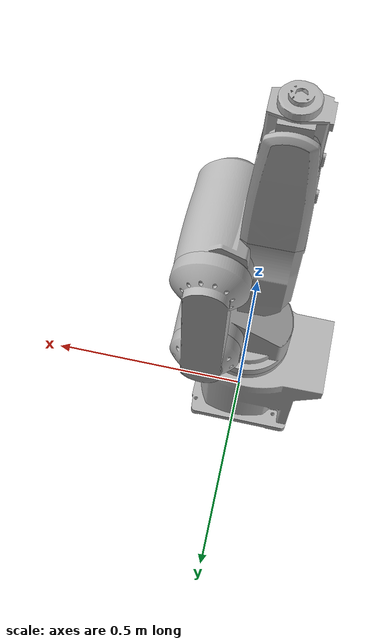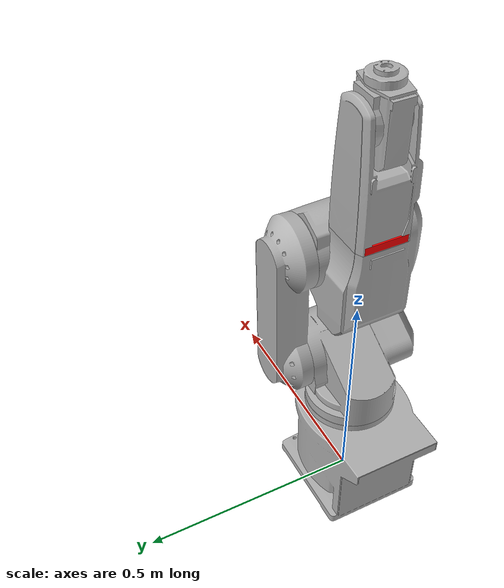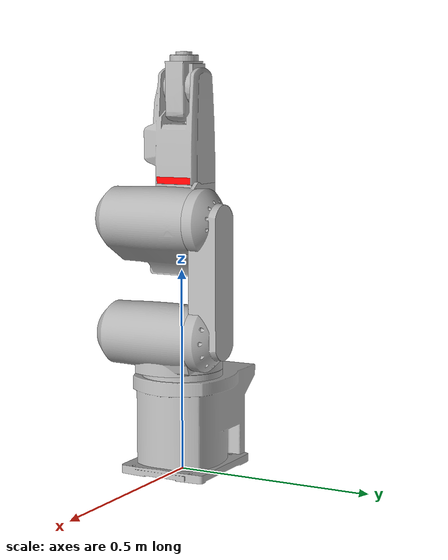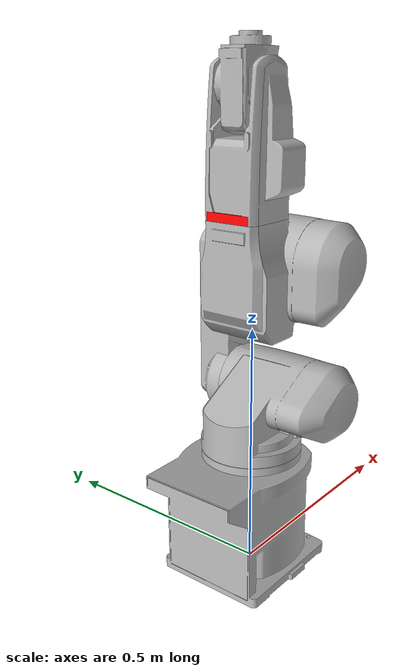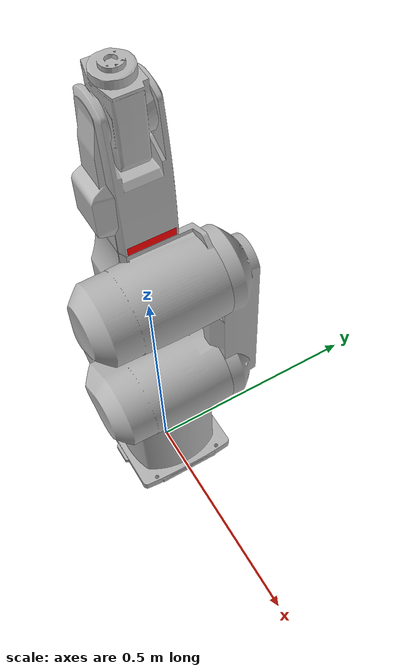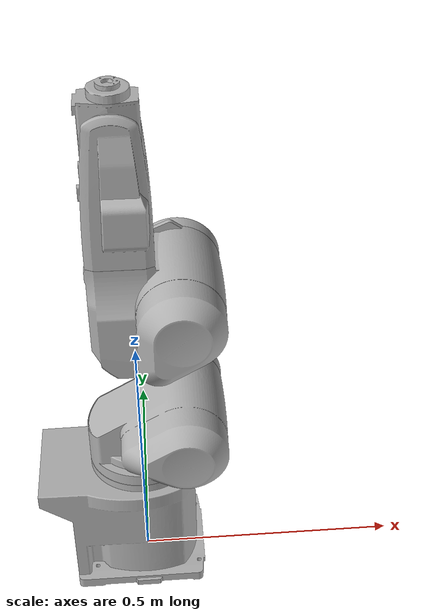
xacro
<?xml version="1.0"?>
<robot xmlns:xacro="http://www.ros.org/wiki/xacro">
  <property name="PI" value="3.1415926535897931" />
  <property name="offset_from_limit" value="5.0" />
  <property name="joint_velocity" value="5.0" />
  <property name="J4d" value="0.1" />

  <!-- base_link -->
  <link name="base_link" >
    <visual>
      <geometry>
          <mesh filename="package://mitsubishi_arm_description/meshes/rv-6s/rv-6s_base.stl" scale="0.001 0.001 0.001"/>
      </geometry>
      <origin rpy="${PI/2} 0 ${PI/2}"/>
      <material name="gray">
          <color rgba="0.7 0.7 0.7 1"/>
      </material>
    </visual>
    <collision>
      <geometry>
          <mesh filename="package://mitsubishi_arm_description/collision/rv-6s/rv-6s_base.stl" scale="0.001 0.001 0.001"/>
      </geometry>
      <origin rpy="${PI/2} 0 ${PI/2}"/>
    </collision>
    <inertial>
      <origin xyz="0 0 1" rpy="0 0 0"/>
      <mass value="0.01"/>
      <inertia
          ixx="1.0" ixy="0.0" ixz="0.0"
          iyy="1.0" iyz="0.0"
          izz="1.0"/>
  </inertial>
  </link>

  <joint name="j1" type="revolute">
      <axis xyz="0 0 1"/>
      <limit effort="1000.0" lower="${(-170+offset_from_limit)*PI/180}" upper="${(170-offset_from_limit)*PI/180}" velocity="${joint_velocity}"/>
      <parent link="base_link"/>
      <child link="shoulder"/>
      <origin xyz="0 0 0.239"/>
      <dynamics damping="100.0" friction="100.0" />
  </joint>

  <!-- shoulder-->
  <link name="shoulder">
      <visual>
          <geometry>
              <mesh filename="package://mitsubishi_arm_description/meshes/rv-6s/rv-6s_shoulder.stl" scale="0.001 0.001 0.001"/>
          </geometry>
          <origin xyz="0 0 0.038" rpy="${PI/2} 0 ${PI/2}"/>
          <material name="grey">
              <color rgba="0.7 0.7 0.7 1"/>
          </material>
      </visual>
      <collision>
          <geometry>
				  <mesh filename="package://mitsubishi_arm_description/collision/rv-6s/rv-6s_shoulder.stl" scale="0.001 0.001 0.001"/>
          </geometry>
          <origin xyz="0 0 0.038" rpy="${PI/2} 0 ${PI/2}"/>
      </collision>
      <inertial>
          <origin xyz="0 0 1" rpy="0 0 0"/>
          <mass value="0.01"/>
          <inertia
              ixx="1.0" ixy="0.0" ixz="0.0"
              iyy="1.0" iyz="0.0"
              izz="1.0"/>
      </inertial>
  </link>

  <joint name="j2" type="revolute">
      <axis xyz="0 0 1"/>
      <limit effort="1000.0" lower="${-92*PI/180}" upper="${(135-offset_from_limit)*PI/180}" velocity="${joint_velocity}"/>
      <parent link="shoulder"/>
      <child link="upper_arm"/>
      <origin xyz="0.085 0 0.111" rpy="${PI/2} 0 ${PI}"/>
      <dynamics damping="100.0" friction="100.0" />
  </joint>

  <!-- upper_arm -->
  <link name="upper_arm">
      <visual>
          <geometry>
              <mesh filename="package://mitsubishi_arm_description/meshes/rv-6s/rv-6s_no1arm.stl" scale="0.001 0.001 0.001"/>
          </geometry>
          <origin xyz="0 0 0.113" rpy="0 ${-PI/2} 0"/>
          <material name="grey">
              <color rgba="0.7 0.7 0.7 1"/>
          </material>
      </visual>
      <collision>
          <geometry>
              <mesh filename="package://mitsubishi_arm_description/collision/rv-6s/rv-6s_no1arm.stl" scale="0.001 0.001 0.001"/>
          </geometry>
          <origin xyz="0 0 0.113" rpy="0 ${-PI/2} 0"/>
      </collision>
      <inertial>
          <origin xyz="0 0 1" rpy="0 0 0"/>
          <mass value="0.01"/>
          <inertia
              ixx="1.0" ixy="0.0" ixz="0.0"
              iyy="1.0" iyz="0.0"
              izz="1.0"/>
      </inertial>
  </link>

  <joint name="j3" type="revolute">
      <axis xyz="0 0 1"/>
      <limit effort="1000.0" lower="${(-107+offset_from_limit)*PI/180}" upper="${(166-offset_from_limit)*PI/180}" velocity="${joint_velocity}"/>
      <parent link="upper_arm"/>
      <child link="elbow"/>
      <origin xyz="0 0.28 0.0" rpy="0 0 ${PI/2}"/>
      <dynamics damping="100.0" friction="100.0" />
  </joint>

  <!-- elbow -->
  <link name="elbow">
      <visual>
          <geometry>
              <mesh filename="package://mitsubishi_arm_description/meshes/rv-6s/rv-6s_elbow.stl" scale="0.001 0.001 0.001"/>
          </geometry>
          <origin xyz="0 0 0.1055" rpy="0 ${-PI/2} ${PI}"/>
          <material name="grey">
              <color rgba="0.7 0.7 0.7 1"/>
          </material>
      </visual>
      <collision>
          <geometry>
              <mesh filename="package://mitsubishi_arm_description/collision/rv-6s/rv-6s_elbow.stl" scale="0.001 0.001 0.001"/>
          </geometry>
          <origin xyz="0 0 0.1055" rpy="0 ${-PI/2} ${PI}"/>
      </collision>
      <inertial>
          <origin xyz="0 0 1" rpy="0 0 0"/>
          <mass value="0.01"/>
          <inertia
              ixx="1.0" ixy="0.0" ixz="0.0"
              iyy="1.0" iyz="0.0"
              izz="1.0"/>
      </inertial>
  </link>

  <joint name="j4" type="revolute">
      <axis xyz="0 0 1"/>
      <limit effort="1000.0" lower="${(-160+offset_from_limit)*PI/180}" upper="${(160-offset_from_limit)*PI/180}" velocity="${joint_velocity}"/>
      <parent link="elbow"/>
      <child link="fore_arm"/>
			<origin xyz="${J4d} ${-0.1+0.0000} -0.00"  rpy="0 ${PI/2} 0"/>
      <dynamics damping="100.0" friction="100.0" />
  </joint>

  <!-- fore_arm -->
  <link name="fore_arm">
      <visual>
          <geometry>
              <mesh filename="package://mitsubishi_arm_description/meshes/rv-6s/rv-6s_joint_arm.stl" scale="0.001 0.001 0.001"/>
          </geometry>
					<origin xyz="0.00035 -0.0002 -0.0003" rpy="0 0 ${PI}"/>
          <material name="grey">
              <color rgba="0.7 0.7 0.7 1"/>
          </material>
	  <origin xyz="0 0 0.0" rpy="0 0 ${PI}"/>
      </visual>
      		<visual>
          	<geometry>
							<box size="0.092 0.12 0.0165"/>
          	</geometry>
						<origin xyz="-0.00315 -0.0002 -0.0085" rpy="0 0 ${PI}"/>
						<material name="grey">
            	<color rgba="1 0 0. 1"/>
          	</material>
      		</visual>
      <collision>
          <geometry>
              <mesh filename="package://mitsubishi_arm_description/collision/rv-6s/rv-6s_joint_arm.stl" scale="0.001 0.001 0.001"/>
          </geometry>
					<origin xyz="0.00035 -0.0002 -0.0003" rpy="0 0 ${PI}"/>
          <material name="grey">
              <color rgba="0.7 0.7 0.7 1"/>
          </material>
      </collision>
			<collision>
          	<geometry>
							<box size="0.092 0.12 0.0165"/>
          	</geometry>
						<origin xyz="-0.00315 -0.0002 -0.0085" rpy="0 0 ${PI}"/>
						<material name="grey">
            	<color rgba="1 0 0. 1"/>
          	</material>
			</collision>
      <inertial>
          <origin xyz="0 0 1" rpy="0 0 0"/>
          <mass value="0.01"/>
          <inertia
              ixx="1.0" ixy="0.0" ixz="0.0"
              iyy="1.0" iyz="0.0"
              izz="1.0"/>
      </inertial>
  </link>

  <joint name="j5" type="revolute">
      <axis xyz="-1 0 0"/>
      <limit effort="1000.0" lower="${(-120+offset_from_limit)*PI/180}" upper="${(120-offset_from_limit)*PI/180}" velocity="${joint_velocity}"/>
      <parent link="fore_arm"/>
      <child link="wrist"/>
      <origin xyz="0.0 ${0} ${0.315-J4d}"  rpy="0.0 0 0"/>
      <dynamics damping="100.0" friction="100.0" />
  </joint>

  <!-- wrist -->
  <link name="wrist">
      <visual>
          <geometry>
              <mesh filename="package://mitsubishi_arm_description/meshes/rv-6s/rv-6s_wrist.stl" scale="0.001 0.001 0.001"/>
          </geometry>
					<origin xyz="-0.0065 0 0" rpy="0 0 ${-PI/2}"/>
          <material name="grey">
              <color rgba="0.7 0.7 0.7 1"/>
          </material>
      </visual>
      <collision>
          <geometry>
              <mesh filename="package://mitsubishi_arm_description/collision/rv-6s/rv-6s_wrist.stl" scale="0.001 0.001 0.001"/>
          </geometry>
					<origin xyz="-0.0065 0 0" rpy="0 0 ${-PI/2}"/>
          <material name="grey">
              <color rgba="0.7 0.7 0.7 1"/>
          </material>
      </collision>
      <inertial>
          <origin xyz="0 0 1" rpy="0 0 0"/>
          <mass value="0.01"/>
          <inertia
              ixx="1.0" ixy="0.0" ixz="0.0"
              iyy="1.0" iyz="0.0"
              izz="1.0"/>
      </inertial>
  </link>

	<!-- disc -->
	<link name="disc">
			<visual>
					<geometry>
							<mesh filename="package://mitsubishi_arm_description/meshes/rv-6s/rv-6s_disc.stl" scale="0.001 0.001 0.001"/>
					</geometry>
					<origin xyz="0.00 0 0.0"  rpy="${-PI/2} 0 ${0}"/>
					<material name="grey">
              <color rgba="0.7 0.7 0.7 1"/>
          </material>
			</visual>
			<collision>
					<geometry>
						<mesh filename="package://mitsubishi_arm_description/collision/rv-6s/rv-6s_disc.stl" scale="0.001 0.001 0.001"/>
					</geometry>
					<origin xyz="0.00 0 0.0"  rpy="${-PI/2} 0 ${0}"/>
					<material name="grey">
              <color rgba="0.7 0.7 0.7 1"/>
          </material>
			</collision>
      <inertial>
          <origin xyz="0 0 1" rpy="0 0 0"/>
          <mass value="0.01"/>
          <inertia
              ixx="1.0" ixy="0.0" ixz="0.0"
              iyy="1.0" iyz="0.0"
              izz="1.0"/>
      </inertial>
	</link>

  <joint name="j6" type="revolute">
      <axis xyz="0 0 1"/>
      <limit effort="1000.0" lower="${(-360+offset_from_limit)*PI/180}" upper="${(360-offset_from_limit)*PI/180}" velocity="${joint_velocity}"/>
      <parent link="wrist"/>
      <child link="disc"/>
      <origin xyz="${0.0} ${-0.0000} 0.062"  rpy="0 0 0"/>
      <dynamics damping="10.0" friction="100.0" />
  </joint>

  <transmission name="tran1">
      <type>transmission_interface/SimpleTransmission</type>
      <joint name="j1">
          <hardwareInterface>PositionJointInterface</hardwareInterface>
      </joint>
      <actuator name="motor1">
          <hardwareInterface>PositionJointInterface</hardwareInterface>
      </actuator>
  </transmission>

  <transmission name="tran2">
      <type>transmission_interface/SimpleTransmission</type>
      <joint name="j2">
          <hardwareInterface>PositionJointInterface</hardwareInterface>
      </joint>
      <actuator name="motor2">
          <hardwareInterface>PositionJointInterface</hardwareInterface>
      </actuator>
  </transmission>

  <transmission name="tran3">
      <type>transmission_interface/SimpleTransmission</type>
      <joint name="j3">
          <hardwareInterface>PositionJointInterface</hardwareInterface>
      </joint>
      <actuator name="motor3">
          <hardwareInterface>PositionJointInterface</hardwareInterface>
      </actuator>
  </transmission>

  <transmission name="tran4">
      <type>transmission_interface/SimpleTransmission</type>
      <joint name="j4">
          <hardwareInterface>PositionJointInterface</hardwareInterface>
      </joint>
      <actuator name="motor4">
          <hardwareInterface>PositionJointInterface</hardwareInterface>
      </actuator>
  </transmission>

  <transmission name="tran5">
      <type>transmission_interface/SimpleTransmission</type>
      <joint name="j5">
          <hardwareInterface>PositionJointInterface</hardwareInterface>
      </joint>
      <actuator name="motor5">
          <hardwareInterface>PositionJointInterface</hardwareInterface>
      </actuator>
  </transmission>

  <transmission name="tran6">
      <type>transmission_interface/SimpleTransmission</type>
      <joint name="j6">
          <hardwareInterface>PositionJointInterface</hardwareInterface>
      </joint>
      <actuator name="motor6">
          <hardwareInterface>PositionJointInterface</hardwareInterface>
      </actuator>
  </transmission>

</robot>
